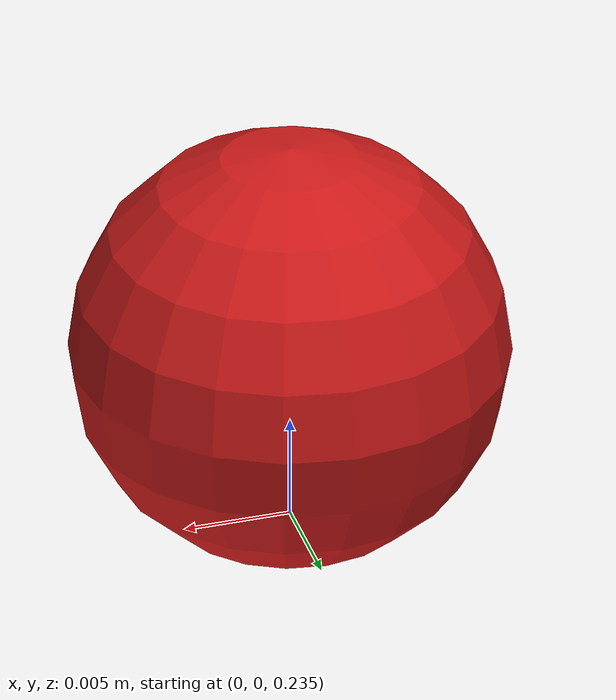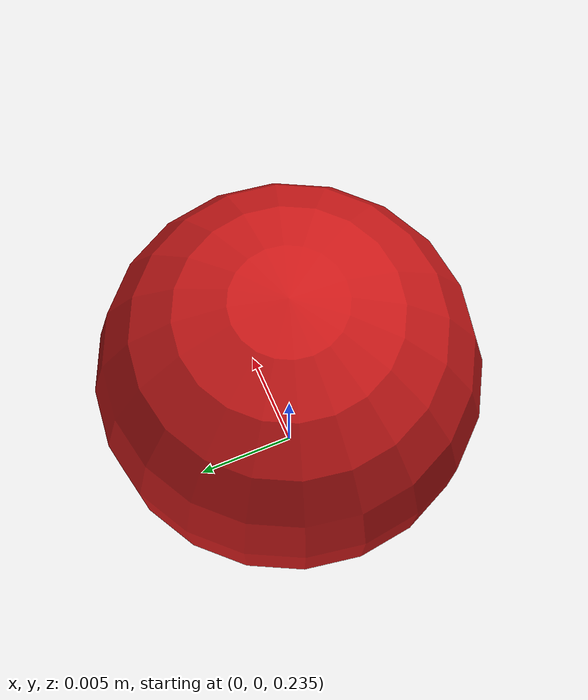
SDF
<?xml version="1.0"?>
<sdf version="1.8">
  <world name="rotino_world">
    <!-- 0.5 ms physics keeps the explicit leg-servo damping (kv 14) numerically stable;
         control and odometry run at 500 Hz, an exact multiple, so their stamps coincide. -->
    <physics name="0_5ms" type="ignored">
      <max_step_size>0.0005</max_step_size>
      <real_time_factor>1.0</real_time_factor>
    </physics>
    <gravity>0 0 -9.81</gravity>

    <plugin filename="ignition-gazebo-physics-system" name="ignition::gazebo::systems::Physics"/>
    <plugin filename="ignition-gazebo-user-commands-system" name="ignition::gazebo::systems::UserCommands"/>
    <plugin filename="ignition-gazebo-scene-broadcaster-system" name="ignition::gazebo::systems::SceneBroadcaster"/>
    <plugin filename="ignition-gazebo-imu-system" name="ignition::gazebo::systems::Imu"/>
    <plugin filename="ignition-gazebo-contact-system" name="ignition::gazebo::systems::Contact"/>
    <!-- /world/rotino_world/wrench: one-step wrench, used for the impact-recovery test -->
    <plugin filename="ignition-gazebo-apply-link-wrench-system" name="ignition::gazebo::systems::ApplyLinkWrench"/>

    <light type="directional" name="sun">
      <cast_shadows>true</cast_shadows>
      <pose>0 -3 4 0 0 0</pose>
      <diffuse>0.85 0.85 0.85 1</diffuse>
      <specular>0.2 0.2 0.2 1</specular>
      <direction>0.2 0.3 -1</direction>
    </light>

    <model name="ground_plane">
      <static>true</static>
      <link name="link">
        <collision name="collision">
          <geometry><plane><normal>0 0 1</normal><size>20 10</size></plane></geometry>
          <!-- DART combines friction with min(mu_a, mu_b), MuJoCo with max. Ground mu = 2.2 makes every
               robot/ground pair match MuJoCo: wheels 2.2, legs/torso 1.8. -->
          <surface>
            <friction><ode><mu>2.2</mu><mu2>2.2</mu2></ode></friction>
          </surface>
        </collision>
        <visual name="visual">
          <geometry><plane><normal>0 0 1</normal><size>20 10</size></plane></geometry>
          <material>
            <ambient>0.35 0.45 0.25 1</ambient>
            <diffuse>0.35 0.45 0.25 1</diffuse>
          </material>
        </visual>
      </link>
    </model>

    <model name="rotino_anchor">
      <static>true</static>
      <pose>0 0 0.2439 0 0 0</pose>
      <link name="anchor_link">
        <visual name="visual">
          <geometry><sphere><radius>0.01</radius></sphere></geometry>
          <material>
            <ambient>0.8 0.1 0.1 1</ambient>
            <diffuse>0.8 0.1 0.1 1</diffuse>
          </material>
        </visual>
      </link>
      <plugin filename="ignition-gazebo-detachable-joint-system" name="ignition::gazebo::systems::DetachableJoint">
        <parent_link>anchor_link</parent_link>
        <child_model>rotino</child_model>
        <child_link>base_link</child_link>
        <detach_topic>/rotino/release</detach_topic>
      </plugin>
    </model>

  </world>
</sdf>
